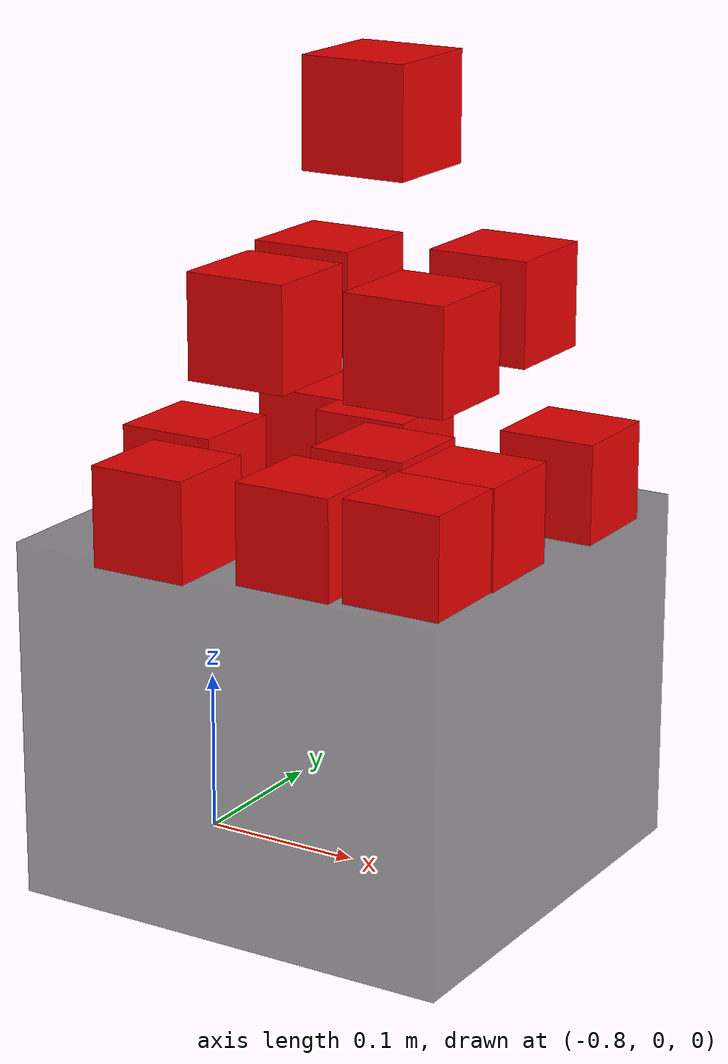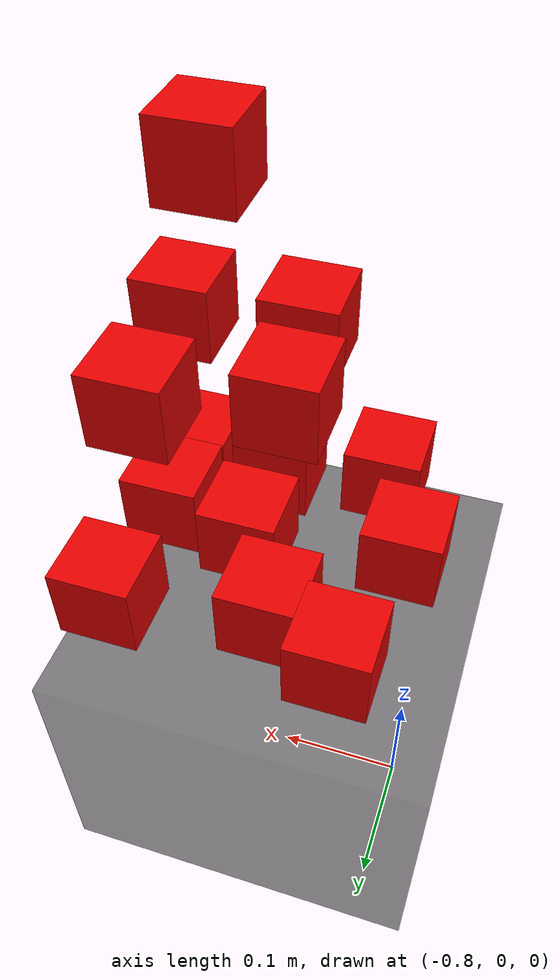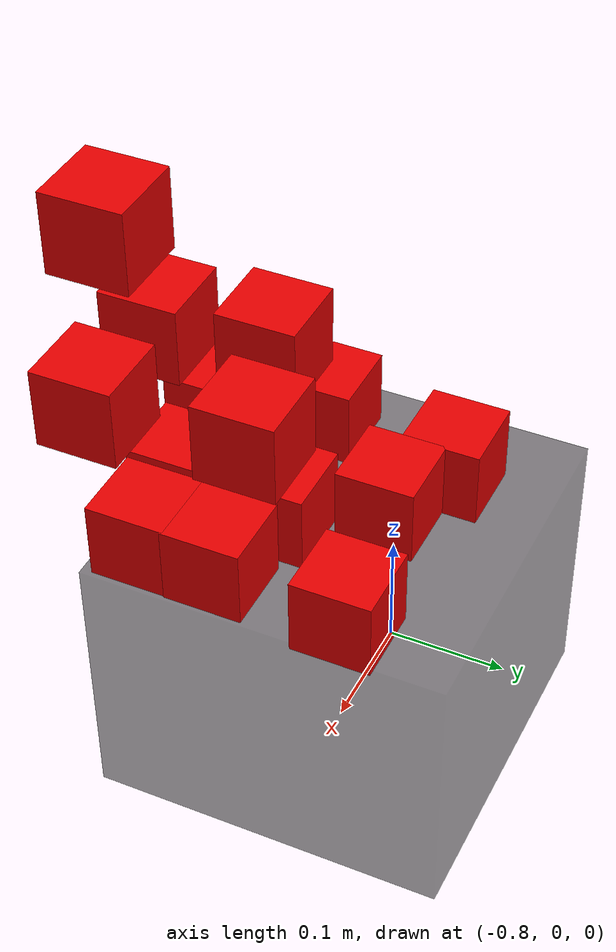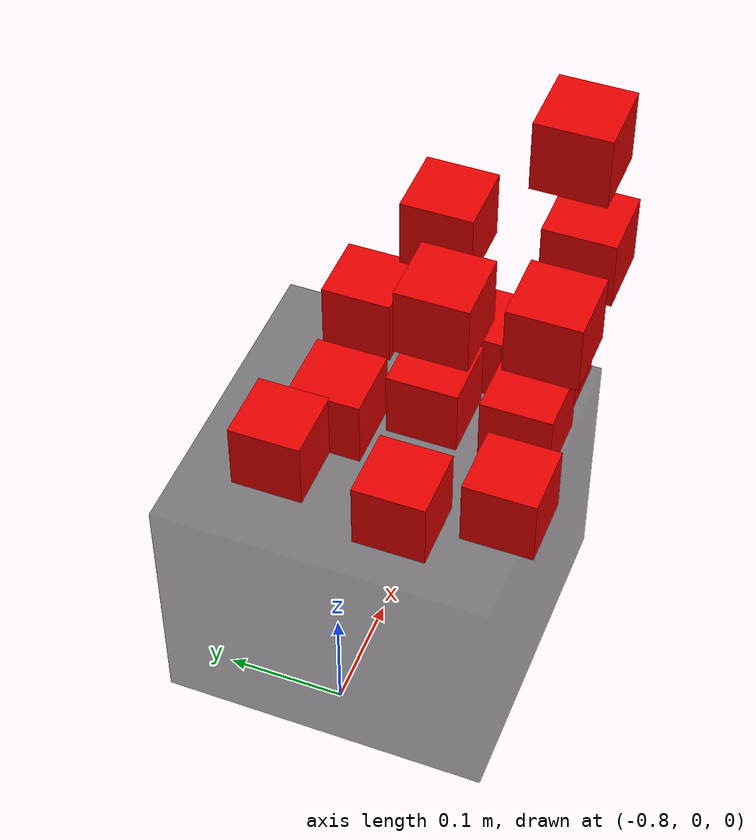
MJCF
<mujoco>
    <worldbody>
		<body pos="-0.7 0 0.11">
            <geom type="box" size="0.13999999999999999 0.13999999999999999 0.11" rgba="0 0 0 0.5"/>
        </body>
        <body pos="-0.594 -0.102 0.25">
            <joint type="free"/>
            <geom type="box" solimp=".999 .999 .0001" solref=".0001 1" size="0.03 0.03 0.03" rgba="0.9 0 0 1"/>
        </body>
        <body pos="-0.593 -0.044 0.25">
            <joint type="free"/>
            <geom type="box" solimp=".999 .999 .0001" solref=".0001 1" size="0.03 0.03 0.03" rgba="0.9 0 0 1"/>
        </body>
        <body pos="-0.585 0.057 0.25">
            <joint type="free"/>
            <geom type="box" solimp=".999 .999 .0001" solref=".0001 1" size="0.03 0.03 0.03" rgba="0.9 0 0 1"/>
        </body>
        <body pos="-0.66 -0.107 0.25">
            <joint type="free"/>
            <geom type="box" solimp=".999 .999 .0001" solref=".0001 1" size="0.03 0.03 0.03" rgba="0.9 0 0 1"/>
        </body>
        <body pos="-0.66 -0.029 0.25">
            <joint type="free"/>
            <geom type="box" solimp=".999 .999 .0001" solref=".0001 1" size="0.03 0.03 0.03" rgba="0.9 0 0 1"/>
        </body>
        <body pos="-0.699 0.038 0.25">
            <joint type="free"/>
            <geom type="box" solimp=".999 .999 .0001" solref=".0001 1" size="0.03 0.03 0.03" rgba="0.9 0 0 1"/>
        </body>
        <body pos="-0.745 -0.123 0.25">
            <joint type="free"/>
            <geom type="box" solimp=".999 .999 .0001" solref=".0001 1" size="0.03 0.03 0.03" rgba="0.9 0 0 1"/>
        </body>
        <body pos="-0.778 -0.047 0.25">
            <joint type="free"/>
            <geom type="box" solimp=".999 .999 .0001" solref=".0001 1" size="0.03 0.03 0.03" rgba="0.9 0 0 1"/>
        </body>
        <body pos="-0.756 0.064 0.25">
            <joint type="free"/>
            <geom type="box" solimp=".999 .999 .0001" solref=".0001 1" size="0.03 0.03 0.03" rgba="0.9 0 0 1"/>
        </body>
        <body pos="-0.58 -0.124 0.37">
            <joint type="free"/>
            <geom type="box" solimp=".999 .999 .0001" solref=".0001 1" size="0.03 0.03 0.03" rgba="0.9 0 0 1"/>
        </body>
        <body pos="-0.592 -0.014 0.37">
            <joint type="free"/>
            <geom type="box" solimp=".999 .999 .0001" solref=".0001 1" size="0.03 0.03 0.03" rgba="0.9 0 0 1"/>
        </body>
        <body pos="-0.675 -0.128 0.37">
            <joint type="free"/>
            <geom type="box" solimp=".999 .999 .0001" solref=".0001 1" size="0.03 0.03 0.03" rgba="0.9 0 0 1"/>
        </body>
        <body pos="-0.686 -0.045 0.37">
            <joint type="free"/>
            <geom type="box" solimp=".999 .999 .0001" solref=".0001 1" size="0.03 0.03 0.03" rgba="0.9 0 0 1"/>
        </body>
        <body pos="-0.607 -0.12 0.49">
            <joint type="free"/>
            <geom type="box" solimp=".999 .999 .0001" solref=".0001 1" size="0.03 0.03 0.03" rgba="0.9 0 0 1"/>
        </body>
    </worldbody>
</mujoco>
